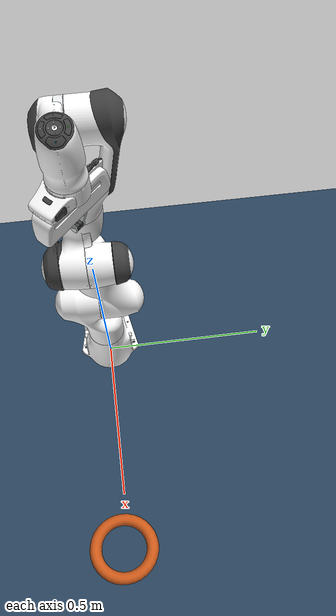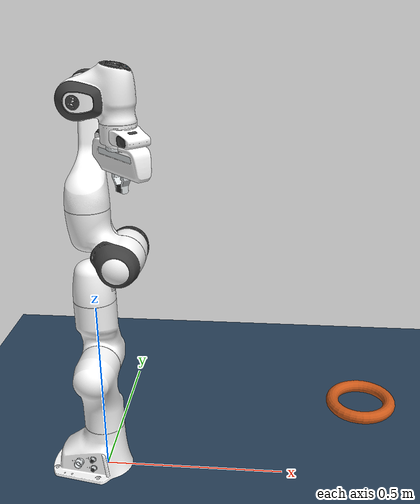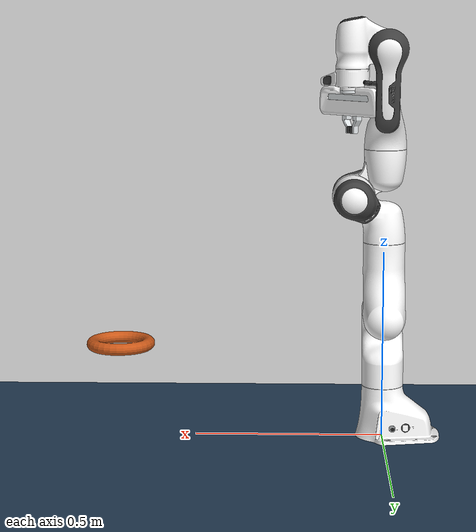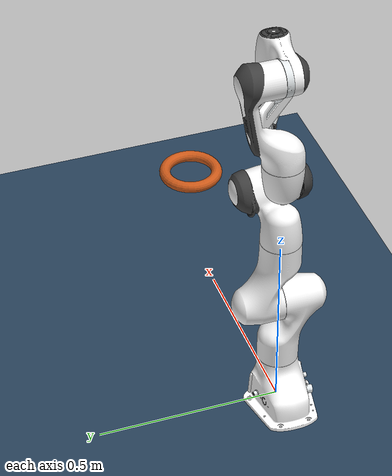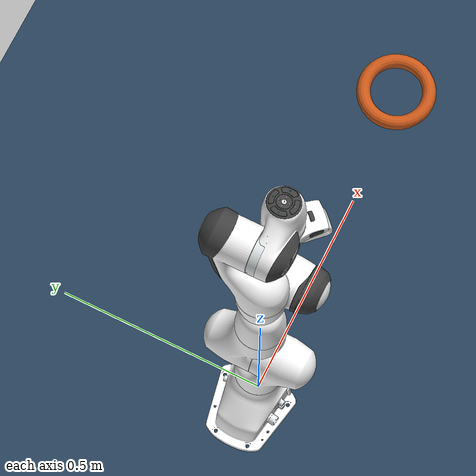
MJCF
<mujoco model="panda scene with capsule32 decomposed torus">
  <include file="panda.xml"/>

  <statistic center="0.3 0 0.4" extent="1"/>
  <option iterations="60" noslip_iterations="20"/>

  <visual>
    <headlight diffuse="0.6 0.6 0.6" ambient="0.3 0.3 0.3" specular="0 0 0"/>
    <rgba haze="0.15 0.25 0.35 1"/>
    <global azimuth="120" elevation="-20"/>
  </visual>

  <asset>
    <texture type="skybox" builtin="gradient" rgb1="0.3 0.5 0.7" rgb2="0 0 0" width="512" height="3072"/>
    <texture type="2d" name="groundplane" builtin="checker" mark="edge" rgb1="0.2 0.3 0.4" rgb2="0.1 0.2 0.3"
      markrgb="0.8 0.8 0.8" width="300" height="300"/>
    <material name="groundplane" texture="groundplane" texuniform="true" texrepeat="5 5" reflectance="0.2"/>
    <material name="torus_mat" rgba="0.8 0.35 0.1 1" specular="0.5" shininess="0.5"/>

    <mesh name="torus_visual" file="torus_capsule32_visual.obj"/>
    <mesh name="torus_ch0" file="torus_capsule32_convex_0.obj"/>
    <mesh name="torus_ch1" file="torus_capsule32_convex_1.obj"/>
    <mesh name="torus_ch2" file="torus_capsule32_convex_2.obj"/>
    <mesh name="torus_ch3" file="torus_capsule32_convex_3.obj"/>
    <mesh name="torus_ch4" file="torus_capsule32_convex_4.obj"/>
    <mesh name="torus_ch5" file="torus_capsule32_convex_5.obj"/>
    <mesh name="torus_ch6" file="torus_capsule32_convex_6.obj"/>
    <mesh name="torus_ch7" file="torus_capsule32_convex_7.obj"/>
    <mesh name="torus_ch8" file="torus_capsule32_convex_8.obj"/>
    <mesh name="torus_ch9" file="torus_capsule32_convex_9.obj"/>
    <mesh name="torus_ch10" file="torus_capsule32_convex_10.obj"/>
    <mesh name="torus_ch11" file="torus_capsule32_convex_11.obj"/>
    <mesh name="torus_ch12" file="torus_capsule32_convex_12.obj"/>
    <mesh name="torus_ch13" file="torus_capsule32_convex_13.obj"/>
    <mesh name="torus_ch14" file="torus_capsule32_convex_14.obj"/>
    <mesh name="torus_ch15" file="torus_capsule32_convex_15.obj"/>
    <mesh name="torus_ch16" file="torus_capsule32_convex_16.obj"/>
    <mesh name="torus_ch17" file="torus_capsule32_convex_17.obj"/>
    <mesh name="torus_ch18" file="torus_capsule32_convex_18.obj"/>
    <mesh name="torus_ch19" file="torus_capsule32_convex_19.obj"/>
    <mesh name="torus_ch20" file="torus_capsule32_convex_20.obj"/>
    <mesh name="torus_ch21" file="torus_capsule32_convex_21.obj"/>
    <mesh name="torus_ch22" file="torus_capsule32_convex_22.obj"/>
    <mesh name="torus_ch23" file="torus_capsule32_convex_23.obj"/>
    <mesh name="torus_ch24" file="torus_capsule32_convex_24.obj"/>
    <mesh name="torus_ch25" file="torus_capsule32_convex_25.obj"/>
    <mesh name="torus_ch26" file="torus_capsule32_convex_26.obj"/>
    <mesh name="torus_ch27" file="torus_capsule32_convex_27.obj"/>
    <mesh name="torus_ch28" file="torus_capsule32_convex_28.obj"/>
    <mesh name="torus_ch29" file="torus_capsule32_convex_29.obj"/>
    <mesh name="torus_ch30" file="torus_capsule32_convex_30.obj"/>
    <mesh name="torus_ch31" file="torus_capsule32_convex_31.obj"/>
  </asset>

  <worldbody>
    <light pos="0 0 1.5" dir="0 0 -1" directional="true"/>
    <geom name="floor" size="0 0 0.05" type="plane" material="groundplane"
          solref="0.001 1" solimp="0.99 0.999 0.001" priority="1"/>

    <!-- Derived from the 32-capsule torus, then split into convex sectors. -->
    <body name="torus" pos="0.7 0 0.25">
      <freejoint/>

      <geom name="torus_visual" type="mesh" mesh="torus_visual" material="torus_mat"
            contype="0" conaffinity="0" group="2" density="0"/>

      <geom name="torus_col0" type="mesh" mesh="torus_ch0" group="3"
            contype="1" conaffinity="1" condim="4" friction="10 4 0.5"
            solref="0.015 1" solimp="0.95 0.99 0.001 0.5 2"
            margin="0.0003" mass="0.000375"/>
      <geom name="torus_col1" type="mesh" mesh="torus_ch1" group="3"
            contype="1" conaffinity="1" condim="4" friction="10 4 0.5"
            solref="0.015 1" solimp="0.95 0.99 0.001 0.5 2"
            margin="0.0003" mass="0.000375"/>
      <geom name="torus_col2" type="mesh" mesh="torus_ch2" group="3"
            contype="1" conaffinity="1" condim="4" friction="10 4 0.5"
            solref="0.015 1" solimp="0.95 0.99 0.001 0.5 2"
            margin="0.0003" mass="0.000375"/>
      <geom name="torus_col3" type="mesh" mesh="torus_ch3" group="3"
            contype="1" conaffinity="1" condim="4" friction="10 4 0.5"
            solref="0.015 1" solimp="0.95 0.99 0.001 0.5 2"
            margin="0.0003" mass="0.000375"/>
      <geom name="torus_col4" type="mesh" mesh="torus_ch4" group="3"
            contype="1" conaffinity="1" condim="4" friction="10 4 0.5"
            solref="0.015 1" solimp="0.95 0.99 0.001 0.5 2"
            margin="0.0003" mass="0.000375"/>
      <geom name="torus_col5" type="mesh" mesh="torus_ch5" group="3"
            contype="1" conaffinity="1" condim="4" friction="10 4 0.5"
            solref="0.015 1" solimp="0.95 0.99 0.001 0.5 2"
            margin="0.0003" mass="0.000375"/>
      <geom name="torus_col6" type="mesh" mesh="torus_ch6" group="3"
            contype="1" conaffinity="1" condim="4" friction="10 4 0.5"
            solref="0.015 1" solimp="0.95 0.99 0.001 0.5 2"
            margin="0.0003" mass="0.000375"/>
      <geom name="torus_col7" type="mesh" mesh="torus_ch7" group="3"
            contype="1" conaffinity="1" condim="4" friction="10 4 0.5"
            solref="0.015 1" solimp="0.95 0.99 0.001 0.5 2"
            margin="0.0003" mass="0.000375"/>
      <geom name="torus_col8" type="mesh" mesh="torus_ch8" group="3"
            contype="1" conaffinity="1" condim="4" friction="10 4 0.5"
            solref="0.015 1" solimp="0.95 0.99 0.001 0.5 2"
            margin="0.0003" mass="0.000375"/>
      <geom name="torus_col9" type="mesh" mesh="torus_ch9" group="3"
            contype="1" conaffinity="1" condim="4" friction="10 4 0.5"
            solref="0.015 1" solimp="0.95 0.99 0.001 0.5 2"
            margin="0.0003" mass="0.000375"/>
      <geom name="torus_col10" type="mesh" mesh="torus_ch10" group="3"
            contype="1" conaffinity="1" condim="4" friction="10 4 0.5"
            solref="0.015 1" solimp="0.95 0.99 0.001 0.5 2"
            margin="0.0003" mass="0.000375"/>
      <geom name="torus_col11" type="mesh" mesh="torus_ch11" group="3"
            contype="1" conaffinity="1" condim="4" friction="10 4 0.5"
            solref="0.015 1" solimp="0.95 0.99 0.001 0.5 2"
            margin="0.0003" mass="0.000375"/>
      <geom name="torus_col12" type="mesh" mesh="torus_ch12" group="3"
            contype="1" conaffinity="1" condim="4" friction="10 4 0.5"
            solref="0.015 1" solimp="0.95 0.99 0.001 0.5 2"
            margin="0.0003" mass="0.000375"/>
      <geom name="torus_col13" type="mesh" mesh="torus_ch13" group="3"
            contype="1" conaffinity="1" condim="4" friction="10 4 0.5"
            solref="0.015 1" solimp="0.95 0.99 0.001 0.5 2"
            margin="0.0003" mass="0.000375"/>
      <geom name="torus_col14" type="mesh" mesh="torus_ch14" group="3"
            contype="1" conaffinity="1" condim="4" friction="10 4 0.5"
            solref="0.015 1" solimp="0.95 0.99 0.001 0.5 2"
            margin="0.0003" mass="0.000375"/>
      <geom name="torus_col15" type="mesh" mesh="torus_ch15" group="3"
            contype="1" conaffinity="1" condim="4" friction="10 4 0.5"
            solref="0.015 1" solimp="0.95 0.99 0.001 0.5 2"
            margin="0.0003" mass="0.000375"/>
      <geom name="torus_col16" type="mesh" mesh="torus_ch16" group="3"
            contype="1" conaffinity="1" condim="4" friction="10 4 0.5"
            solref="0.015 1" solimp="0.95 0.99 0.001 0.5 2"
            margin="0.0003" mass="0.000375"/>
      <geom name="torus_col17" type="mesh" mesh="torus_ch17" group="3"
            contype="1" conaffinity="1" condim="4" friction="10 4 0.5"
            solref="0.015 1" solimp="0.95 0.99 0.001 0.5 2"
            margin="0.0003" mass="0.000375"/>
      <geom name="torus_col18" type="mesh" mesh="torus_ch18" group="3"
            contype="1" conaffinity="1" condim="4" friction="10 4 0.5"
            solref="0.015 1" solimp="0.95 0.99 0.001 0.5 2"
            margin="0.0003" mass="0.000375"/>
      <geom name="torus_col19" type="mesh" mesh="torus_ch19" group="3"
            contype="1" conaffinity="1" condim="4" friction="10 4 0.5"
            solref="0.015 1" solimp="0.95 0.99 0.001 0.5 2"
            margin="0.0003" mass="0.000375"/>
      <geom name="torus_col20" type="mesh" mesh="torus_ch20" group="3"
            contype="1" conaffinity="1" condim="4" friction="10 4 0.5"
            solref="0.015 1" solimp="0.95 0.99 0.001 0.5 2"
            margin="0.0003" mass="0.000375"/>
      <geom name="torus_col21" type="mesh" mesh="torus_ch21" group="3"
            contype="1" conaffinity="1" condim="4" friction="10 4 0.5"
            solref="0.015 1" solimp="0.95 0.99 0.001 0.5 2"
            margin="0.0003" mass="0.000375"/>
      <geom name="torus_col22" type="mesh" mesh="torus_ch22" group="3"
            contype="1" conaffinity="1" condim="4" friction="10 4 0.5"
            solref="0.015 1" solimp="0.95 0.99 0.001 0.5 2"
            margin="0.0003" mass="0.000375"/>
      <geom name="torus_col23" type="mesh" mesh="torus_ch23" group="3"
            contype="1" conaffinity="1" condim="4" friction="10 4 0.5"
            solref="0.015 1" solimp="0.95 0.99 0.001 0.5 2"
            margin="0.0003" mass="0.000375"/>
      <geom name="torus_col24" type="mesh" mesh="torus_ch24" group="3"
            contype="1" conaffinity="1" condim="4" friction="10 4 0.5"
            solref="0.015 1" solimp="0.95 0.99 0.001 0.5 2"
            margin="0.0003" mass="0.000375"/>
      <geom name="torus_col25" type="mesh" mesh="torus_ch25" group="3"
            contype="1" conaffinity="1" condim="4" friction="10 4 0.5"
            solref="0.015 1" solimp="0.95 0.99 0.001 0.5 2"
            margin="0.0003" mass="0.000375"/>
      <geom name="torus_col26" type="mesh" mesh="torus_ch26" group="3"
            contype="1" conaffinity="1" condim="4" friction="10 4 0.5"
            solref="0.015 1" solimp="0.95 0.99 0.001 0.5 2"
            margin="0.0003" mass="0.000375"/>
      <geom name="torus_col27" type="mesh" mesh="torus_ch27" group="3"
            contype="1" conaffinity="1" condim="4" friction="10 4 0.5"
            solref="0.015 1" solimp="0.95 0.99 0.001 0.5 2"
            margin="0.0003" mass="0.000375"/>
      <geom name="torus_col28" type="mesh" mesh="torus_ch28" group="3"
            contype="1" conaffinity="1" condim="4" friction="10 4 0.5"
            solref="0.015 1" solimp="0.95 0.99 0.001 0.5 2"
            margin="0.0003" mass="0.000375"/>
      <geom name="torus_col29" type="mesh" mesh="torus_ch29" group="3"
            contype="1" conaffinity="1" condim="4" friction="10 4 0.5"
            solref="0.015 1" solimp="0.95 0.99 0.001 0.5 2"
            margin="0.0003" mass="0.000375"/>
      <geom name="torus_col30" type="mesh" mesh="torus_ch30" group="3"
            contype="1" conaffinity="1" condim="4" friction="10 4 0.5"
            solref="0.015 1" solimp="0.95 0.99 0.001 0.5 2"
            margin="0.0003" mass="0.000375"/>
      <geom name="torus_col31" type="mesh" mesh="torus_ch31" group="3"
            contype="1" conaffinity="1" condim="4" friction="10 4 0.5"
            solref="0.015 1" solimp="0.95 0.99 0.001 0.5 2"
            margin="0.0003" mass="0.000375"/>
    </body>
  </worldbody>

</mujoco>

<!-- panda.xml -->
<mujoco model="panda">
  <compiler angle="radian" meshdir="assets" autolimits="true"/>

  <option integrator="implicitfast"/>

  <default>
    <default class="panda">
      <material specular="0.5" shininess="0.25"/>
      <joint armature="0.1" damping="1" axis="0 0 1" range="-2.8973 2.8973"/>
      <general dyntype="none" biastype="affine" ctrlrange="-2.8973 2.8973" forcerange="-87 87"/>
      <default class="finger">
        <joint axis="0 1 0" type="slide" range="0 0.04" damping="5" armature="0.02"/>
      </default>

      <default class="visual">
        <geom type="mesh" contype="0" conaffinity="0" group="2"/>
      </default>
      <default class="collision">
        <geom type="mesh" group="3"/>
        <default class="fingertip_pad_collision_1">
          <geom type="box" size="0.0085 0.004 0.0085" pos="0 0.0055 0.0445"
                condim="6" friction="30 12 3" solref="-30000 -1000"
                solimp="0.99 0.999 0.0005 0.5 2" priority="2"/>
        </default>
        <default class="fingertip_pad_collision_2">
          <geom type="box" size="0.003 0.002 0.003" pos="0.0055 0.002 0.05"
                condim="6" friction="30 12 3" solref="-30000 -1000"
                solimp="0.99 0.999 0.0005 0.5 2" priority="2"/>
        </default>
        <default class="fingertip_pad_collision_3">
          <geom type="box" size="0.003 0.002 0.003" pos="-0.0055 0.002 0.05"
                condim="6" friction="30 12 3" solref="-30000 -1000"
                solimp="0.99 0.999 0.0005 0.5 2" priority="2"/>
        </default>
        <default class="fingertip_pad_collision_4">
          <geom type="box" size="0.003 0.002 0.0035" pos="0.0055 0.002 0.0395"
                condim="6" friction="30 12 3" solref="-30000 -1000"
                solimp="0.99 0.999 0.0005 0.5 2" priority="2"/>
        </default>
        <default class="fingertip_pad_collision_5">
          <geom type="box" size="0.003 0.002 0.0035" pos="-0.0055 0.002 0.0395"
                condim="6" friction="30 12 3" solref="-30000 -1000"
                solimp="0.99 0.999 0.0005 0.5 2" priority="2"/>
        </default>
      </default>
    </default>
  </default>

  <asset>
    <material class="panda" name="white" rgba="1 1 1 1"/>
    <material class="panda" name="off_white" rgba="0.901961 0.921569 0.929412 1"/>
    <material class="panda" name="black" rgba="0.25 0.25 0.25 1"/>
    <material class="panda" name="green" rgba="0 1 0 1"/>
    <material class="panda" name="light_blue" rgba="0.039216 0.541176 0.780392 1"/>

    <!-- Collision meshes -->
    <mesh name="link0_c" file="link0.stl"/>
    <mesh name="link1_c" file="link1.stl"/>
    <mesh name="link2_c" file="link2.stl"/>
    <mesh name="link3_c" file="link3.stl"/>
    <mesh name="link4_c" file="link4.stl"/>
    <mesh name="link5_c0" file="link5_collision_0.obj"/>
    <mesh name="link5_c1" file="link5_collision_1.obj"/>
    <mesh name="link5_c2" file="link5_collision_2.obj"/>
    <mesh name="link6_c" file="link6.stl"/>
    <mesh name="link7_c" file="link7.stl"/>
    <mesh name="hand_c" file="hand.stl"/>

    <!-- Visual meshes -->
    <mesh file="link0_0.obj"/>
    <mesh file="link0_1.obj"/>
    <mesh file="link0_2.obj"/>
    <mesh file="link0_3.obj"/>
    <mesh file="link0_4.obj"/>
    <mesh file="link0_5.obj"/>
    <mesh file="link0_7.obj"/>
    <mesh file="link0_8.obj"/>
    <mesh file="link0_9.obj"/>
    <mesh file="link0_10.obj"/>
    <mesh file="link0_11.obj"/>
    <mesh file="link1.obj"/>
    <mesh file="link2.obj"/>
    <mesh file="link3_0.obj"/>
    <mesh file="link3_1.obj"/>
    <mesh file="link3_2.obj"/>
    <mesh file="link3_3.obj"/>
    <mesh file="link4_0.obj"/>
    <mesh file="link4_1.obj"/>
    <mesh file="link4_2.obj"/>
    <mesh file="link4_3.obj"/>
    <mesh file="link5_0.obj"/>
    <mesh file="link5_1.obj"/>
    <mesh file="link5_2.obj"/>
    <mesh file="link6_0.obj"/>
    <mesh file="link6_1.obj"/>
    <mesh file="link6_2.obj"/>
    <mesh file="link6_3.obj"/>
    <mesh file="link6_4.obj"/>
    <mesh file="link6_5.obj"/>
    <mesh file="link6_6.obj"/>
    <mesh file="link6_7.obj"/>
    <mesh file="link6_8.obj"/>
    <mesh file="link6_9.obj"/>
    <mesh file="link6_10.obj"/>
    <mesh file="link6_11.obj"/>
    <mesh file="link6_12.obj"/>
    <mesh file="link6_13.obj"/>
    <mesh file="link6_14.obj"/>
    <mesh file="link6_15.obj"/>
    <mesh file="link6_16.obj"/>
    <mesh file="link7_0.obj"/>
    <mesh file="link7_1.obj"/>
    <mesh file="link7_2.obj"/>
    <mesh file="link7_3.obj"/>
    <mesh file="link7_4.obj"/>
    <mesh file="link7_5.obj"/>
    <mesh file="link7_6.obj"/>
    <mesh file="link7_7.obj"/>
    <mesh file="hand_0.obj"/>
    <mesh file="hand_1.obj"/>
    <mesh file="hand_2.obj"/>
    <mesh file="hand_3.obj"/>
    <mesh file="hand_4.obj"/>
    <mesh file="finger_0.obj"/>
    <mesh file="finger_1.obj"/>
  </asset>

  <worldbody>
    <light name="top" pos="0 0 2" mode="trackcom"/>
    <body name="link0" childclass="panda">
      <inertial mass="0.629769" pos="-0.041018 -0.00014 0.049974"
        fullinertia="0.00315 0.00388 0.004285 8.2904e-7 0.00015 8.2299e-6"/>
      <geom mesh="link0_0" material="off_white" class="visual"/>
      <geom mesh="link0_1" material="black" class="visual"/>
      <geom mesh="link0_2" material="off_white" class="visual"/>
      <geom mesh="link0_3" material="black" class="visual"/>
      <geom mesh="link0_4" material="off_white" class="visual"/>
      <geom mesh="link0_5" material="black" class="visual"/>
      <geom mesh="link0_7" material="white" class="visual"/>
      <geom mesh="link0_8" material="white" class="visual"/>
      <geom mesh="link0_9" material="black" class="visual"/>
      <geom mesh="link0_10" material="off_white" class="visual"/>
      <geom mesh="link0_11" material="white" class="visual"/>
      <geom mesh="link0_c" class="collision"/>
      <body name="link1" pos="0 0 0.333">
        <inertial mass="4.970684" pos="0.003875 0.002081 -0.04762"
          fullinertia="0.70337 0.70661 0.0091170 -0.00013900 0.0067720 0.019169"/>
        <joint name="joint1"/>
        <geom material="white" mesh="link1" class="visual"/>
        <geom mesh="link1_c" class="collision"/>
        <body name="link2" quat="1 -1 0 0">
          <inertial mass="0.646926" pos="-0.003141 -0.02872 0.003495"
            fullinertia="0.0079620 2.8110e-2 2.5995e-2 -3.925e-3 1.0254e-2 7.04e-4"/>
          <joint name="joint2" range="-1.7628 1.7628"/>
          <geom material="white" mesh="link2" class="visual"/>
          <geom mesh="link2_c" class="collision"/>
          <body name="link3" pos="0 -0.316 0" quat="1 1 0 0">
            <joint name="joint3"/>
            <inertial mass="3.228604" pos="2.7518e-2 3.9252e-2 -6.6502e-2"
              fullinertia="3.7242e-2 3.6155e-2 1.083e-2 -4.761e-3 -1.1396e-2 -1.2805e-2"/>
            <geom mesh="link3_0" material="white" class="visual"/>
            <geom mesh="link3_1" material="white" class="visual"/>
            <geom mesh="link3_2" material="white" class="visual"/>
            <geom mesh="link3_3" material="black" class="visual"/>
            <geom mesh="link3_c" class="collision"/>
            <body name="link4" pos="0.0825 0 0" quat="1 1 0 0">
              <inertial mass="3.587895" pos="-5.317e-2 1.04419e-1 2.7454e-2"
                fullinertia="2.5853e-2 1.9552e-2 2.8323e-2 7.796e-3 -1.332e-3 8.641e-3"/>
              <joint name="joint4" range="-3.0718 -0.0698"/>
              <geom mesh="link4_0" material="white" class="visual"/>
              <geom mesh="link4_1" material="white" class="visual"/>
              <geom mesh="link4_2" material="black" class="visual"/>
              <geom mesh="link4_3" material="white" class="visual"/>
              <geom mesh="link4_c" class="collision"/>
              <body name="link5" pos="-0.0825 0.384 0" quat="1 -1 0 0">
                <inertial mass="1.225946" pos="-1.1953e-2 4.1065e-2 -3.8437e-2"
                  fullinertia="3.5549e-2 2.9474e-2 8.627e-3 -2.117e-3 -4.037e-3 2.29e-4"/>
                <joint name="joint5"/>
                <geom mesh="link5_0" material="black" class="visual"/>
                <geom mesh="link5_1" material="white" class="visual"/>
                <geom mesh="link5_2" material="white" class="visual"/>
                <geom mesh="link5_c0" class="collision"/>
                <geom mesh="link5_c1" class="collision"/>
                <geom mesh="link5_c2" class="collision"/>
                <body name="link6" quat="1 1 0 0">
                  <inertial mass="1.666555" pos="6.0149e-2 -1.4117e-2 -1.0517e-2"
                    fullinertia="1.964e-3 4.354e-3 5.433e-3 1.09e-4 -1.158e-3 3.41e-4"/>
                  <joint name="joint6" range="-0.0175 3.7525"/>
                  <geom mesh="link6_0" material="off_white" class="visual"/>
                  <geom mesh="link6_1" material="white" class="visual"/>
                  <geom mesh="link6_2" material="black" class="visual"/>
                  <geom mesh="link6_3" material="white" class="visual"/>
                  <geom mesh="link6_4" material="white" class="visual"/>
                  <geom mesh="link6_5" material="white" class="visual"/>
                  <geom mesh="link6_6" material="white" class="visual"/>
                  <geom mesh="link6_7" material="light_blue" class="visual"/>
                  <geom mesh="link6_8" material="light_blue" class="visual"/>
                  <geom mesh="link6_9" material="black" class="visual"/>
                  <geom mesh="link6_10" material="black" class="visual"/>
                  <geom mesh="link6_11" material="white" class="visual"/>
                  <geom mesh="link6_12" material="green" class="visual"/>
                  <geom mesh="link6_13" material="white" class="visual"/>
                  <geom mesh="link6_14" material="black" class="visual"/>
                  <geom mesh="link6_15" material="black" class="visual"/>
                  <geom mesh="link6_16" material="white" class="visual"/>
                  <geom mesh="link6_c" class="collision"/>
                  <body name="link7" pos="0.088 0 0" quat="1 1 0 0">
                    <inertial mass="7.35522e-01" pos="1.0517e-2 -4.252e-3 6.1597e-2"
                      fullinertia="1.2516e-2 1.0027e-2 4.815e-3 -4.28e-4 -1.196e-3 -7.41e-4"/>
                    <joint name="joint7"/>
                    <geom mesh="link7_0" material="white" class="visual"/>
                    <geom mesh="link7_1" material="black" class="visual"/>
                    <geom mesh="link7_2" material="black" class="visual"/>
                    <geom mesh="link7_3" material="black" class="visual"/>
                    <geom mesh="link7_4" material="black" class="visual"/>
                    <geom mesh="link7_5" material="black" class="visual"/>
                    <geom mesh="link7_6" material="black" class="visual"/>
                    <geom mesh="link7_7" material="white" class="visual"/>
                    <geom mesh="link7_c" class="collision"/>
                    <body name="hand" pos="0 0 0.107" quat="0.9238795 0 0 -0.3826834">
                      <inertial mass="0.73" pos="-0.01 0 0.03" diaginertia="0.001 0.0025 0.0017"/>
                      <geom mesh="hand_0" material="off_white" class="visual"/>
                      <geom mesh="hand_1" material="black" class="visual"/>
                      <geom mesh="hand_2" material="black" class="visual"/>
                      <geom mesh="hand_3" material="white" class="visual"/>
                      <geom mesh="hand_4" material="off_white" class="visual"/>
                      <geom mesh="hand_c" class="collision"/>
                      <body name="left_finger" pos="0 0 0.0584">
                        <inertial mass="0.015" pos="0 0 0" diaginertia="2.375e-6 2.375e-6 7.5e-7"/>
                        <joint name="finger_joint1" class="finger"/>
                        <geom mesh="finger_0" material="off_white" class="visual"/>
                        <geom mesh="finger_1" material="black" class="visual"/>
                        <geom mesh="finger_0" class="collision"/>
                        <geom class="fingertip_pad_collision_1"/>
                        <geom class="fingertip_pad_collision_2"/>
                        <geom class="fingertip_pad_collision_3"/>
                        <geom class="fingertip_pad_collision_4"/>
                        <geom class="fingertip_pad_collision_5"/>
                      </body>
                      <body name="right_finger" pos="0 0 0.0584" quat="0 0 0 1">
                        <inertial mass="0.015" pos="0 0 0" diaginertia="2.375e-6 2.375e-6 7.5e-7"/>
                        <joint name="finger_joint2" class="finger"/>
                        <geom mesh="finger_0" material="off_white" class="visual"/>
                        <geom mesh="finger_1" material="black" class="visual"/>
                        <geom mesh="finger_0" class="collision"/>
                        <geom class="fingertip_pad_collision_1"/>
                        <geom class="fingertip_pad_collision_2"/>
                        <geom class="fingertip_pad_collision_3"/>
                        <geom class="fingertip_pad_collision_4"/>
                        <geom class="fingertip_pad_collision_5"/>
                      </body>
                    </body>
                  </body>
                </body>
              </body>
            </body>
          </body>
        </body>
      </body>
    </body>
  </worldbody>

  <tendon>
    <fixed name="split">
      <joint joint="finger_joint1" coef="0.5"/>
      <joint joint="finger_joint2" coef="0.5"/>
    </fixed>
  </tendon>

  <equality>
    <joint joint1="finger_joint1" joint2="finger_joint2" solimp="0.95 0.99 0.001" solref="0.005 1"/>
  </equality>

  <actuator>
    <general class="panda" name="actuator1" joint="joint1" gainprm="4500" biasprm="0 -4500 -450"/>
    <general class="panda" name="actuator2" joint="joint2" gainprm="4500" biasprm="0 -4500 -450"
      ctrlrange="-1.7628 1.7628"/>
    <general class="panda" name="actuator3" joint="joint3" gainprm="3500" biasprm="0 -3500 -350"/>
    <general class="panda" name="actuator4" joint="joint4" gainprm="3500" biasprm="0 -3500 -350"
      ctrlrange="-3.0718 -0.0698"/>
    <general class="panda" name="actuator5" joint="joint5" gainprm="2000" biasprm="0 -2000 -200" forcerange="-12 12"/>
    <general class="panda" name="actuator6" joint="joint6" gainprm="2000" biasprm="0 -2000 -200" forcerange="-12 12"
      ctrlrange="-0.0175 3.7525"/>
    <general class="panda" name="actuator7" joint="joint7" gainprm="2000" biasprm="0 -2000 -200" forcerange="-12 12"/>
    <!-- Remap original ctrlrange (0, 0.04) to (0, 255): 0.04 * 100 / 255 = 0.01568627451 -->
    <general class="panda" name="actuator8" tendon="split" forcerange="-300 300" ctrlrange="0 255"
      gainprm="0.04705882353 0 0" biasprm="0 -300 -30"/>
  </actuator>

  <keyframe>
    <key name="home" qpos="0 0 0 -1.57079 0 1.57079 -0.7853 0.04 0.04" ctrl="0 0 0 -1.57079 0 1.57079 -0.7853 255"/>
  </keyframe>

  <contact>
    <exclude body1="link0" body2="link1"/>
  </contact>
</mujoco>
